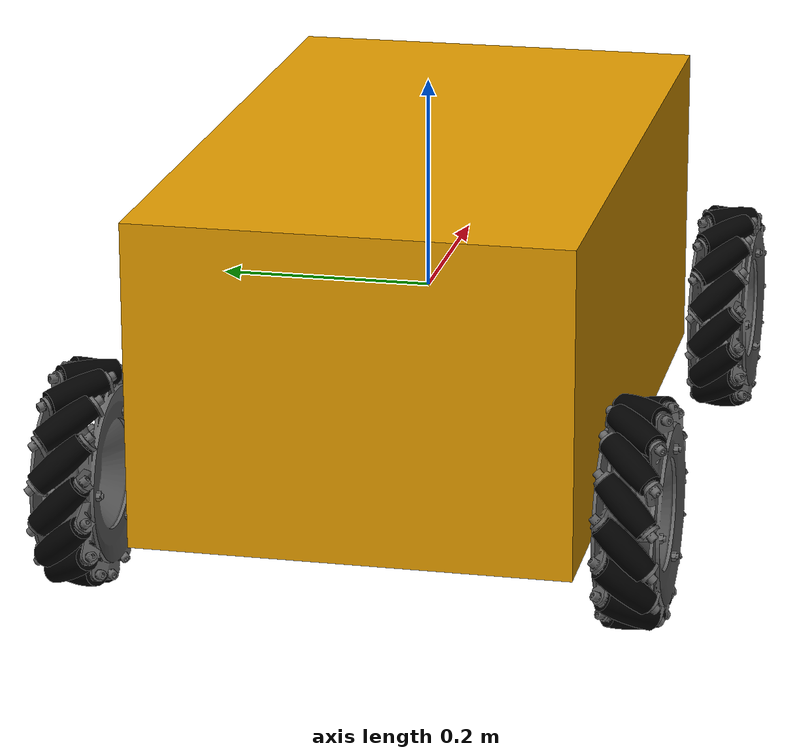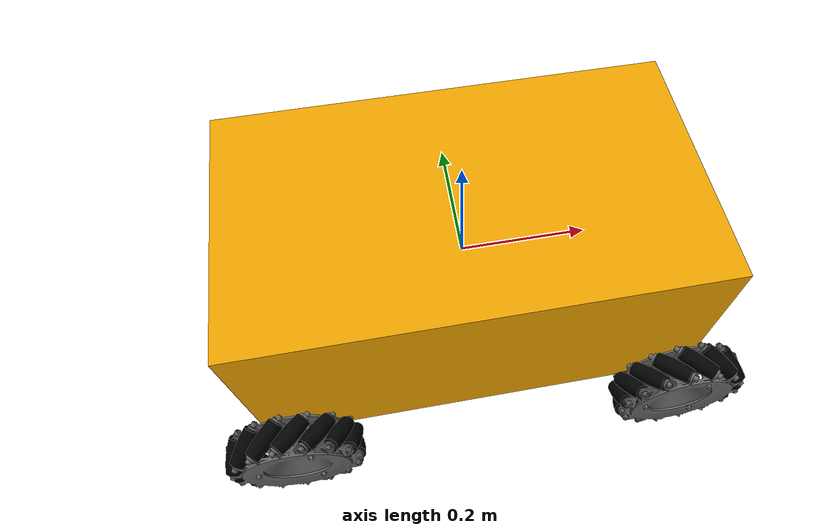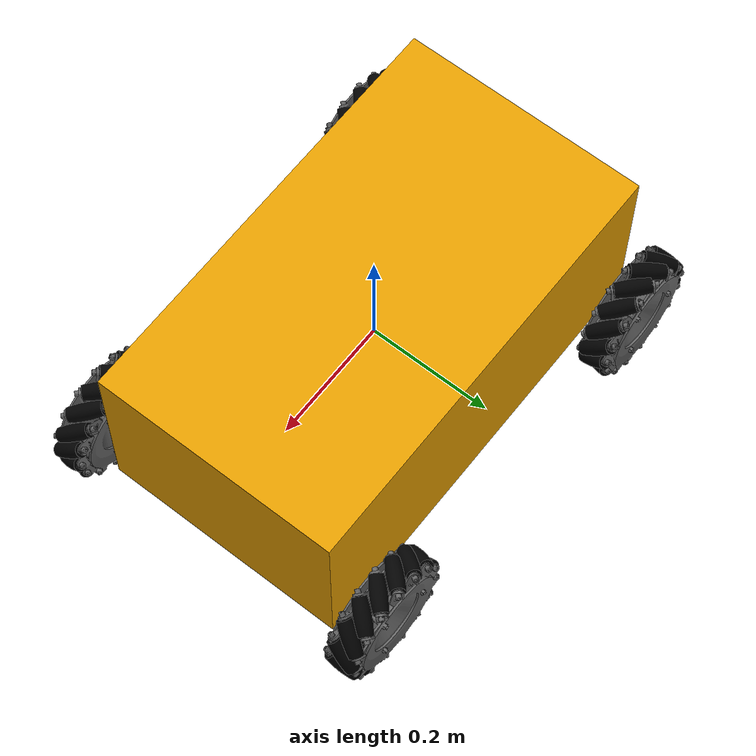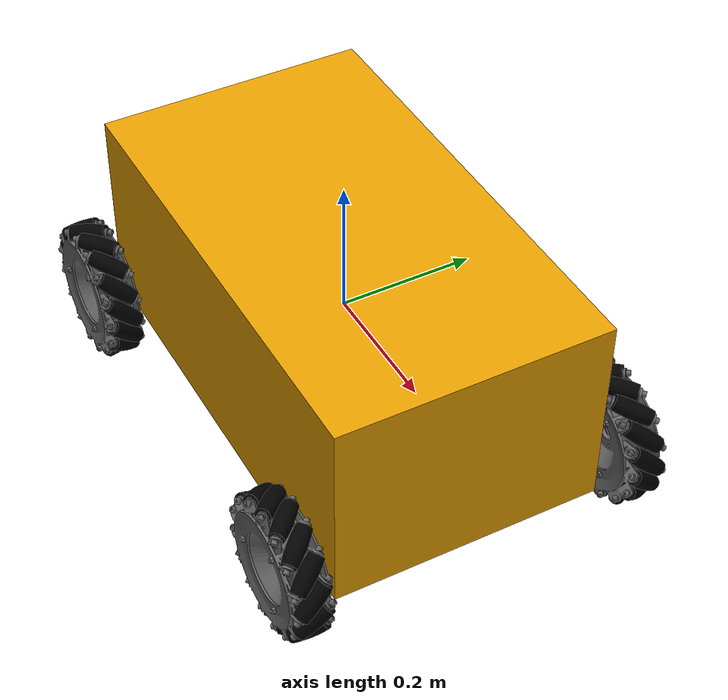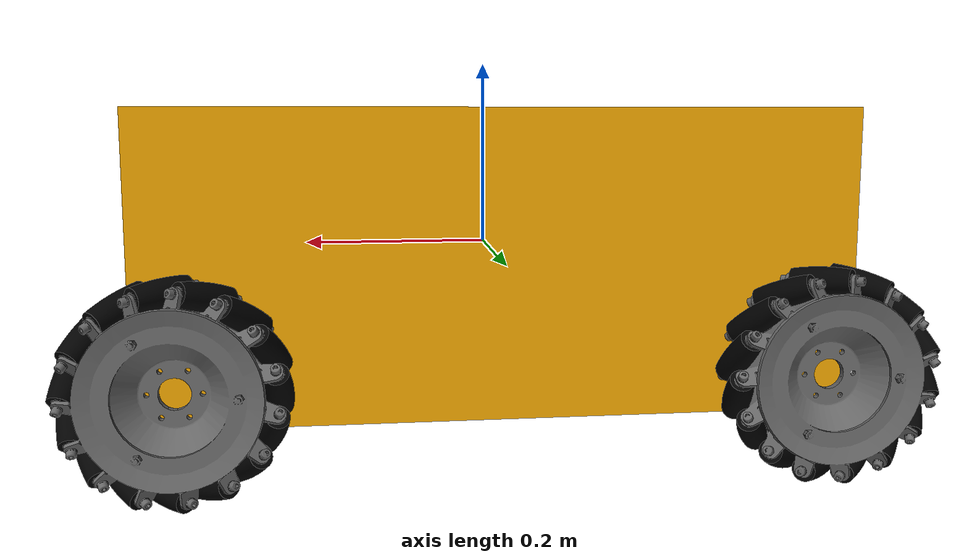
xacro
<?xml version="1.0" ?>
<robot name="mecanum_wheel_robot" xmlns:xacro="http://ros.org/wiki/xacro">

  <xacro:include filename="$(find fuji_mecanum)/urdf/mecanum_wheel_macro.xacro" />

  <link name="base_link">
    <visual>
      <geometry>
        <box size="0.7 0.4 0.3" />
      </geometry>
    </visual>
    <collision>
      <geometry>
        <box size="0.7 0.4 0.3" />
      </geometry>
    </collision>

    <inertial>
      <origin xyz="0 0 0" />
      <mass value="10.0" />
      <inertia ixx="0.83333" ixy="0.0" ixz="0.0"
              iyy="1.9333" iyz="0.0"
              izz="2.1667" />
    </inertial>

  </link>

  <gazebo reference="base_link">
    <mu1 value="0.6"/>
    <mu2 value="0.6"/>
    <kp value="10000000.0" />
    <kd value="1.0" />
    <fdir1 value="0 1 0"/>
  </gazebo>

  <xacro:mecanum_wheel name="front_right" side="1"  interface="hardware_interface/EffortJointInterface"/>
  <xacro:mecanum_wheel name="front_left"  side="-1" interface="hardware_interface/EffortJointInterface"/>
  <xacro:mecanum_wheel name="rear_right"  side="-1" interface="hardware_interface/EffortJointInterface"/>
  <xacro:mecanum_wheel name="rear_left"   side="1"  interface="hardware_interface/EffortJointInterface"/>

  <joint name="front_right_wheel_joint" type="continuous">
    <origin xyz="0.3 -0.25 -0.1" rpy="0 0 ${pi/2}" />
    <axis xyz="1 0 0" />
    <parent link="base_link" />
    <child link="front_right_wheel_link" />
  </joint>

  <joint name="front_left_wheel_joint" type="continuous">
    <origin xyz="0.3 0.25 -0.1" rpy="0 0 ${pi/2}" />
    <axis xyz="1 0 0" />
    <parent link="base_link" />
    <child link="front_left_wheel_link" />
  </joint>

  <joint name="rear_right_wheel_joint" type="continuous">
    <origin xyz="-0.3 -0.25 -0.1" rpy="0 0 ${pi/2}" />
    <axis xyz="1 0 0" />
    <parent link="base_link" />
    <child link="rear_right_wheel_link" />
  </joint>

  <joint name="rear_left_wheel_joint" type="continuous">
    <origin xyz="-0.3 0.25 -0.1" rpy="0 0 ${pi/2}" />
    <axis xyz="1 0 0" />
    <parent link="base_link" />
    <child link="rear_left_wheel_link" />
  </joint>

  <gazebo>
    <plugin name="gazebo_ros_control" filename="libgazebo_ros_control.so">
      <robotNamespace>/</robotNamespace>
      <robotSimType>gazebo_ros_control/DefaultRobotHWSim</robotSimType>
      <legacyModeNS>true</legacyModeNS>
    </plugin>
  </gazebo>

</robot>

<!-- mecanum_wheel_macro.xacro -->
<robot name="mecanum_wheel" xmlns:xacro="http://ros.org/wiki/xacro">

  <xacro:include filename="$(find fuji_mecanum)/urdf/wheel.xacro" />
  <xacro:include filename="$(find fuji_mecanum)/urdf/rollers.xacro"  />

  <xacro:macro name="mecanum_wheel" params="name side interface">

    <xacro:wheel_link name="${name}" side="${side}" />
    <xacro:rollers_link name="${name}" side="${side}" />

    <transmission name="${name}_wheel_trans">
      <type>transmission_interface/SimpleTransmission</type>
      <joint name="${name}_wheel_joint">
        <hardwareInterface>${interface}</hardwareInterface>
      </joint>
      <actuator name="${name}_wheel_motor">
        <hardwareInterface>${interface}</hardwareInterface>
        <mechanismReduction>1</mechanismReduction>
      </actuator>
    </transmission>

  </xacro:macro>

</robot>

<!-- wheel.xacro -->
<robot name="wheel" xmlns:xacro="http://www.ros.org/wiki/xacro">

  <xacro:macro name="wheel_link" params="name side">
    <link name="${name}_wheel_link">
      <visual>
        <origin xyz="0 0 0" rpy="0 0 0" />
        <geometry>
          <mesh filename="package://fuji_mecanum/mesh/visual/wheel.dae" scale="${side} 1 1" />
        </geometry>
      </visual>
      <collision>
        <geometry>
          <mesh filename="package://fuji_mecanum/mesh/collision/wheel.stl" scale="${side} 1 1" />
        </geometry>
      </collision>
      <inertial>
        <origin xyz="0 0 0" />
        <mass value="2.0" />
        <inertia ixx="0.042025" ixy="0.0" ixz="0.0"
                iyy="0.024279" iyz="0.0"
                izz="0.024279" />
      </inertial>
    </link>

    <gazebo reference="${name}_wheel_link">
      <mu1 value="0.6"/>
      <mu2 value="0.6"/>
      <kp value="10000000.0" />
      <kd value="1.0" />
      <fdir1 value="0 1 0"/>
    </gazebo>

  </xacro:macro>

</robot>

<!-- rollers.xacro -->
<robot name="wheel" xmlns:xacro="http://www.ros.org/wiki/xacro">

  <xacro:macro name="roller_origin" params="th side" >

    <xacro:if value="${side==1}">
      <origin xyz="0 ${0.0895*cos(th)} ${0.0895*sin(th)}" rpy="${atan(-tan(th)*sqrt(2.0))} ${asin(cos(th)/sqrt(2.0))} ${atan(sin(th))}"/>
    </xacro:if>

    <xacro:if value="${side==-1}">
      <origin xyz="0 ${0.0895*cos(th)} ${0.0895*sin(th)}" rpy="${atan(-tan(th)*sqrt(2.0))} ${asin(-cos(th)/sqrt(2.0))} ${atan(-sin(th))}"/>
    </xacro:if>

  </xacro:macro>

  <xacro:macro name="roller_loop" params="name side num loop" >

    <xacro:if value="${loop}">

      <link name="${name}_roller${loop}_link">
        <visual>
          <origin xyz="0 0 0" rpy="0 0 0" />
          <geometry>
            <mesh filename="package://fuji_mecanum/mesh/visual/roller.dae" scale="1 1 1" />
          </geometry>
        </visual>
        <collision>
          <geometry>
            <mesh filename="package://fuji_mecanum/mesh/collision/roller.stl" scale="1 1 1" />
          </geometry>
        </collision>
        <inertial>
          <origin xyz="0 0 0" />
          <mass value="0.3" />
          <inertia ixx="0.00024000" ixy="0.0" ixz="0.0"
                  iyy="0.00076000" iyz="0.0"
                  izz="0.00076000" />
        </inertial>
      </link>

      <joint name="${name}_roller${loop}_joint" type="continuous">
        <xacro:roller_origin th="${radians(360/num*(loop-1))}" side="${side}"/>
        <axis xyz="1 0 0"/>
        <parent link="${name}_wheel_link" />
        <child link="${name}_roller${loop}_link" />
        <dynamics damping="0.001" friction="0.0001" />
      </joint>

      <transmission name="$${name}_roller${loop}_trans">
        <type>transmission_interface/SimpleTransmission</type>
        <joint name="${name}_roller${loop}_joint">
          <hardwareInterface>hardware_interface/EffortJointInterface</hardwareInterface>
        </joint>
        <actuator name="${name}_roller${loop}_motor">
          <hardwareInterface>hardware_interface/EffortJointInterface</hardwareInterface>
          <mechanismReduction>1</mechanismReduction>
        </actuator>
      </transmission>

      <gazebo reference="${name}_roller${loop}_link">
        <mu1 value="0.8"/>
        <mu2 value="0.8"/>
        <kp value="10000000.0" />
        <kd value="1.0" />
        <fdir1 value="0 1 0"/>
      </gazebo>

      <xacro:roller_loop name="${name}" side="${side}" num="${num}" loop="${loop - 1}" />

    </xacro:if>

  </xacro:macro>

  <xacro:macro name="rollers_link" params="name side">
    <xacro:roller_loop name="${name}" side="${side}" num="15" loop="15" />
  </xacro:macro>

</robot>
